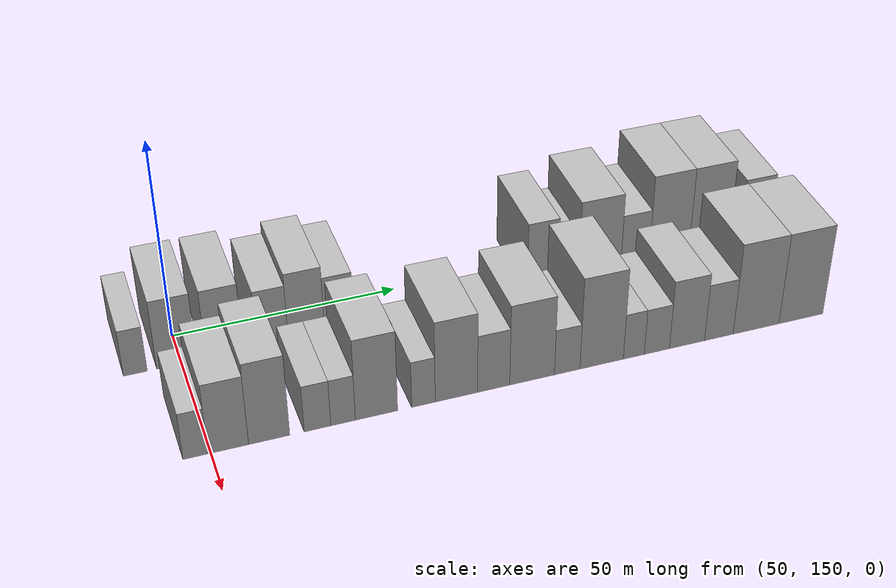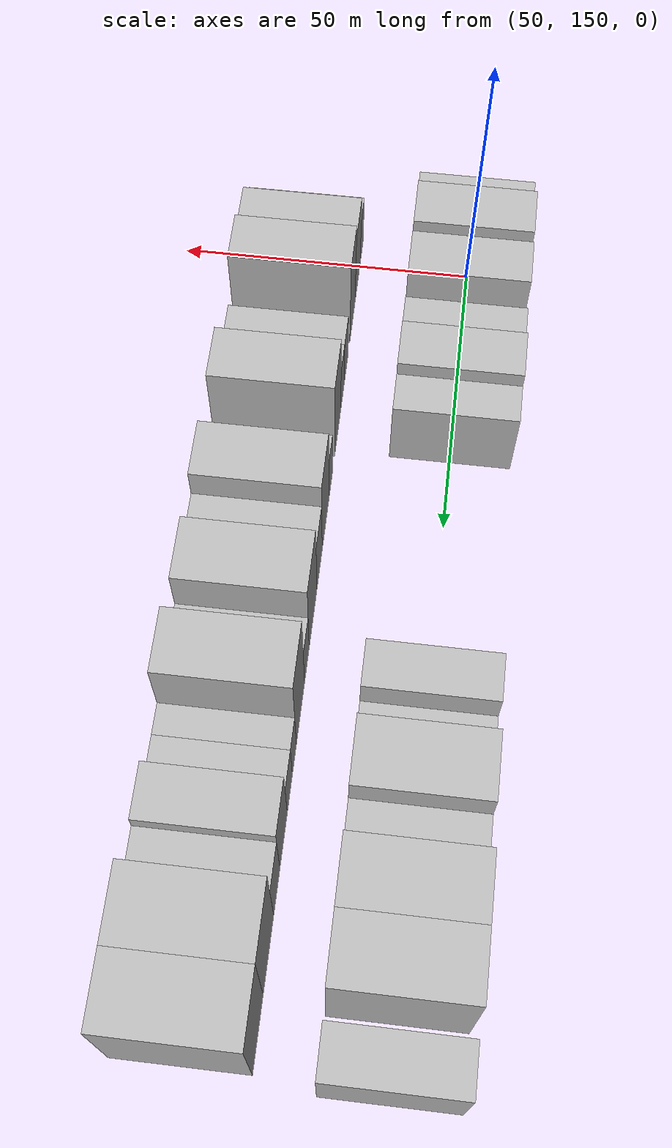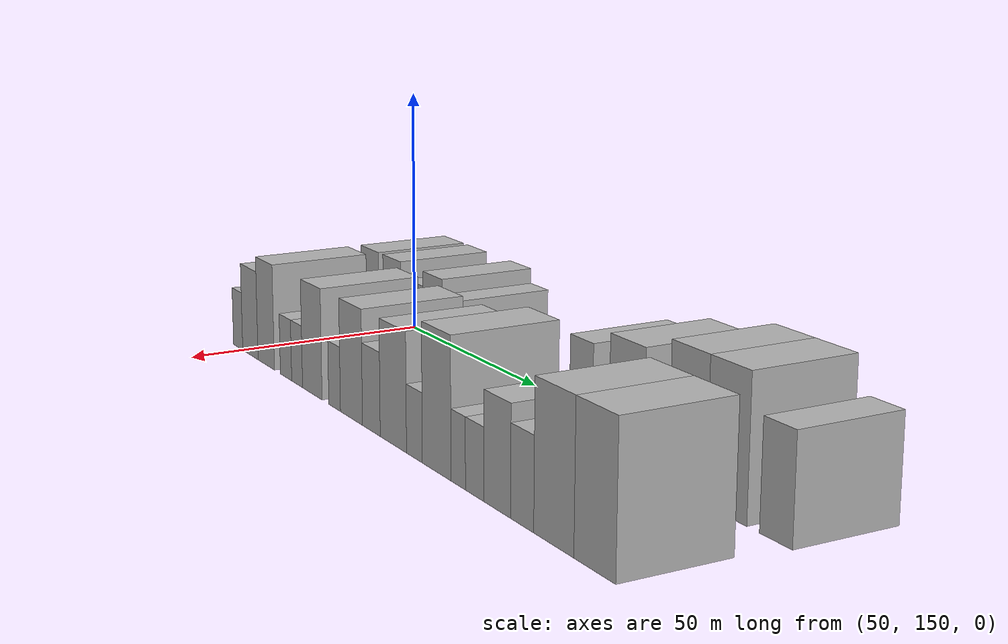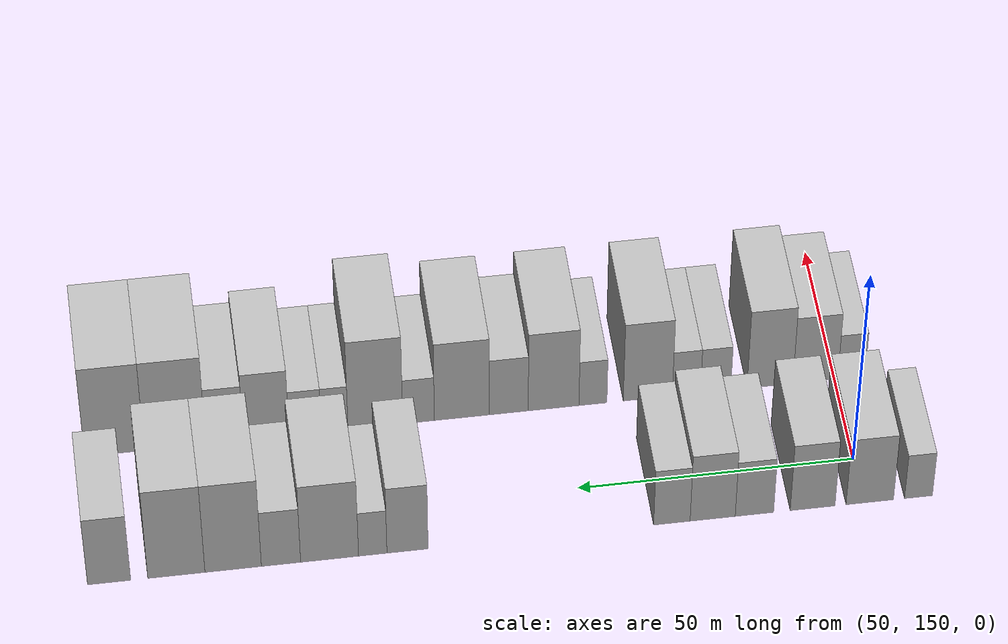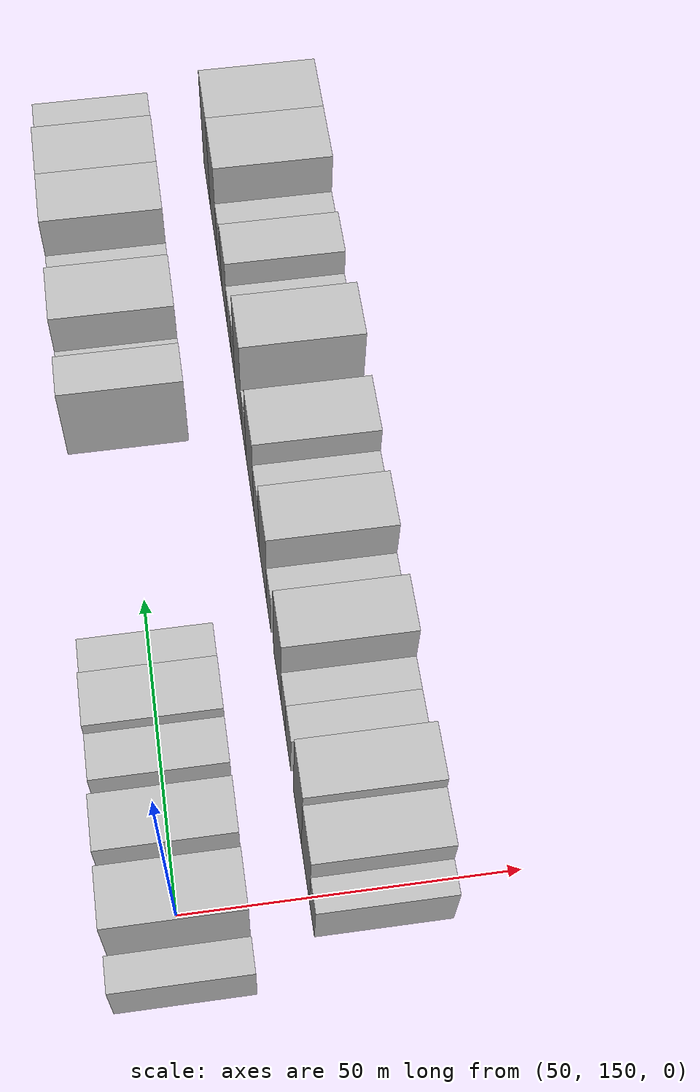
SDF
<sdf version="1.6">
 <world name="default">
  <model name="building_47">
   <static>1</static>
   <pose>50.0000 140.1266 0 0.000000 0.000000 0.000000</pose>
   <link name="link">
    <pose>0 0 6.00 0 0 0</pose>
    <collision name="collision"><geometry><box><size>20.0000 5.0519 12.0000</size></box></geometry></collision>
    <visual name="visual">
     <cast_shadows>0</cast_shadows>
     <geometry><box><size>20.0000 5.0519 12.0000</size></box></geometry>
     <material>
      <script>
       <uri>model://HANNAS_wall/materials/scripts</uri>
       <uri>model://HANNAS_wall/materials/textures</uri>
       <name>vrc/HANNAS_wall</name>
      </script>
     </material>
    </visual>
   </link>
  </model>
  <model name="building_48">
   <static>1</static>
   <pose>50.0000 148.9408 0 0.000000 0.000000 0.000000</pose>
   <link name="link">
    <pose>0 0 9.00 0 0 0</pose>
    <collision name="collision"><geometry><box><size>20.0000 8.5766 18.0000</size></box></geometry></collision>
    <visual name="visual">
     <cast_shadows>0</cast_shadows>
     <geometry><box><size>20.0000 8.5766 18.0000</size></box></geometry>
     <material>
      <script>
       <uri>model://HANNAS_wall/materials/scripts</uri>
       <uri>model://HANNAS_wall/materials/textures</uri>
       <name>vrc/HANNAS_wall</name>
      </script>
     </material>
    </visual>
   </link>
  </model>
  <model name="building_49">
   <static>1</static>
   <pose>50.0000 159.2718 0 0.000000 0.000000 0.000000</pose>
   <link name="link">
    <pose>0 0 9.00 0 0 0</pose>
    <collision name="collision"><geometry><box><size>20.0000 8.0853 18.0000</size></box></geometry></collision>
    <visual name="visual">
     <cast_shadows>0</cast_shadows>
     <geometry><box><size>20.0000 8.0853 18.0000</size></box></geometry>
     <material>
      <script>
       <uri>model://HANNAS_wall/materials/scripts</uri>
       <uri>model://HANNAS_wall/materials/textures</uri>
       <name>vrc/HANNAS_wall</name>
      </script>
     </material>
    </visual>
   </link>
  </model>
  <model name="building_50">
   <static>1</static>
   <pose>50.0000 169.7689 0 0.000000 0.000000 0.000000</pose>
   <link name="link">
    <pose>0 0 7.50 0 0 0</pose>
    <collision name="collision"><geometry><box><size>20.0000 6.9091 15.0000</size></box></geometry></collision>
    <visual name="visual">
     <cast_shadows>0</cast_shadows>
     <geometry><box><size>20.0000 6.9091 15.0000</size></box></geometry>
     <material>
      <script>
       <uri>model://HANNAS_wall/materials/scripts</uri>
       <uri>model://HANNAS_wall/materials/textures</uri>
       <name>vrc/HANNAS_wall</name>
      </script>
     </material>
    </visual>
   </link>
  </model>
  <model name="building_51">
   <static>1</static>
   <pose>50.0000 177.2824 0 0.000000 0.000000 0.000000</pose>
   <link name="link">
    <pose>0 0 9.00 0 0 0</pose>
    <collision name="collision"><geometry><box><size>20.0000 8.1179 18.0000</size></box></geometry></collision>
    <visual name="visual">
     <cast_shadows>0</cast_shadows>
     <geometry><box><size>20.0000 8.1179 18.0000</size></box></geometry>
     <material>
      <script>
       <uri>model://HANNAS_wall/materials/scripts</uri>
       <uri>model://HANNAS_wall/materials/textures</uri>
       <name>vrc/HANNAS_wall</name>
      </script>
     </material>
    </visual>
   </link>
  </model>
  <model name="building_52">
   <static>1</static>
   <pose>50.0000 184.6182 0 0.000000 0.000000 0.000000</pose>
   <link name="link">
    <pose>0 0 7.50 0 0 0</pose>
    <collision name="collision"><geometry><box><size>20.0000 6.5537 15.0000</size></box></geometry></collision>
    <visual name="visual">
     <cast_shadows>0</cast_shadows>
     <geometry><box><size>20.0000 6.5537 15.0000</size></box></geometry>
     <material>
      <script>
       <uri>model://HANNAS_wall/materials/scripts</uri>
       <uri>model://HANNAS_wall/materials/textures</uri>
       <name>vrc/HANNAS_wall</name>
      </script>
     </material>
    </visual>
   </link>
  </model>
  <model name="building_53">
   <static>1</static>
   <pose>50.0000 231.8629 0 0.000000 0.000000 0.000000</pose>
   <link name="link">
    <pose>0 0 9.00 0 0 0</pose>
    <collision name="collision"><geometry><box><size>20.0000 7.3119 18.0000</size></box></geometry></collision>
    <visual name="visual">
     <cast_shadows>0</cast_shadows>
     <geometry><box><size>20.0000 7.3119 18.0000</size></box></geometry>
     <material>
      <script>
       <uri>model://HANNAS_wall/materials/scripts</uri>
       <uri>model://HANNAS_wall/materials/textures</uri>
       <name>vrc/HANNAS_wall</name>
      </script>
     </material>
    </visual>
   </link>
  </model>
  <model name="building_54">
   <static>1</static>
   <pose>50.0000 238.0434 0 0.000000 0.000000 0.000000</pose>
   <link name="link">
    <pose>0 0 6.00 0 0 0</pose>
    <collision name="collision"><geometry><box><size>20.0000 5.0492 12.0000</size></box></geometry></collision>
    <visual name="visual">
     <cast_shadows>0</cast_shadows>
     <geometry><box><size>20.0000 5.0492 12.0000</size></box></geometry>
     <material>
      <script>
       <uri>model://HANNAS_wall/materials/scripts</uri>
       <uri>model://HANNAS_wall/materials/textures</uri>
       <name>vrc/HANNAS_wall</name>
      </script>
     </material>
    </visual>
   </link>
  </model>
  <model name="building_55">
   <static>1</static>
   <pose>50.0000 245.7052 0 0.000000 0.000000 0.000000</pose>
   <link name="link">
    <pose>0 0 10.50 0 0 0</pose>
    <collision name="collision"><geometry><box><size>20.0000 10.2743 21.0000</size></box></geometry></collision>
    <visual name="visual">
     <cast_shadows>0</cast_shadows>
     <geometry><box><size>20.0000 10.2743 21.0000</size></box></geometry>
     <material>
      <script>
       <uri>model://HANNAS_wall/materials/scripts</uri>
       <uri>model://HANNAS_wall/materials/textures</uri>
       <name>vrc/HANNAS_wall</name>
      </script>
     </material>
    </visual>
   </link>
  </model>
  <model name="building_56">
   <static>1</static>
   <pose>50.0000 254.3147 0 0.000000 0.000000 0.000000</pose>
   <link name="link">
    <pose>0 0 7.50 0 0 0</pose>
    <collision name="collision"><geometry><box><size>20.0000 6.9448 15.0000</size></box></geometry></collision>
    <visual name="visual">
     <cast_shadows>0</cast_shadows>
     <geometry><box><size>20.0000 6.9448 15.0000</size></box></geometry>
     <material>
      <script>
       <uri>model://HANNAS_wall/materials/scripts</uri>
       <uri>model://HANNAS_wall/materials/textures</uri>
       <name>vrc/HANNAS_wall</name>
      </script>
     </material>
    </visual>
   </link>
  </model>
  <model name="building_57">
   <static>1</static>
   <pose>50.0000 262.7760 0 0.000000 0.000000 0.000000</pose>
   <link name="link">
    <pose>0 0 12.00 0 0 0</pose>
    <collision name="collision"><geometry><box><size>20.0000 9.9779 24.0000</size></box></geometry></collision>
    <visual name="visual">
     <cast_shadows>0</cast_shadows>
     <geometry><box><size>20.0000 9.9779 24.0000</size></box></geometry>
     <material>
      <script>
       <uri>model://HANNAS_wall/materials/scripts</uri>
       <uri>model://HANNAS_wall/materials/textures</uri>
       <name>vrc/HANNAS_wall</name>
      </script>
     </material>
    </visual>
   </link>
  </model>
  <model name="building_58">
   <static>1</static>
   <pose>50.0000 272.8071 0 0.000000 0.000000 0.000000</pose>
   <link name="link">
    <pose>0 0 12.00 0 0 0</pose>
    <collision name="collision"><geometry><box><size>20.0000 10.0843 24.0000</size></box></geometry></collision>
    <visual name="visual">
     <cast_shadows>0</cast_shadows>
     <geometry><box><size>20.0000 10.0843 24.0000</size></box></geometry>
     <material>
      <script>
       <uri>model://HANNAS_wall/materials/scripts</uri>
       <uri>model://HANNAS_wall/materials/textures</uri>
       <name>vrc/HANNAS_wall</name>
      </script>
     </material>
    </visual>
   </link>
  </model>
  <model name="building_59">
   <static>1</static>
   <pose>50.0000 284.6481 0 0.000000 0.000000 0.000000</pose>
   <link name="link">
    <pose>0 0 9.00 0 0 0</pose>
    <collision name="collision"><geometry><box><size>20.0000 7.5978 18.0000</size></box></geometry></collision>
    <visual name="visual">
     <cast_shadows>0</cast_shadows>
     <geometry><box><size>20.0000 7.5978 18.0000</size></box></geometry>
     <material>
      <script>
       <uri>model://HANNAS_wall/materials/scripts</uri>
       <uri>model://HANNAS_wall/materials/textures</uri>
       <name>vrc/HANNAS_wall</name>
      </script>
     </material>
    </visual>
   </link>
  </model>
  <model name="building_106">
   <static>1</static>
   <pose>79.0000 146.9332 0 0.000000 0.000000 0.000000</pose>
   <link name="link">
    <pose>0 0 6.00 0 0 0</pose>
    <collision name="collision"><geometry><box><size>20.0000 5.0632 12.0000</size></box></geometry></collision>
    <visual name="visual">
     <cast_shadows>0</cast_shadows>
     <geometry><box><size>20.0000 5.0632 12.0000</size></box></geometry>
     <material>
      <script>
       <uri>model://HANNAS_wall/materials/scripts</uri>
       <uri>model://HANNAS_wall/materials/textures</uri>
       <name>vrc/HANNAS_wall</name>
      </script>
     </material>
    </visual>
   </link>
  </model>
  <model name="building_107">
   <static>1</static>
   <pose>79.0000 153.6059 0 0.000000 0.000000 0.000000</pose>
   <link name="link">
    <pose>0 0 9.00 0 0 0</pose>
    <collision name="collision"><geometry><box><size>20.0000 8.2823 18.0000</size></box></geometry></collision>
    <visual name="visual">
     <cast_shadows>0</cast_shadows>
     <geometry><box><size>20.0000 8.2823 18.0000</size></box></geometry>
     <material>
      <script>
       <uri>model://HANNAS_wall/materials/scripts</uri>
       <uri>model://HANNAS_wall/materials/textures</uri>
       <name>vrc/HANNAS_wall</name>
      </script>
     </material>
    </visual>
   </link>
  </model>
  <model name="building_108">
   <static>1</static>
   <pose>79.0000 161.9780 0 0.000000 0.000000 0.000000</pose>
   <link name="link">
    <pose>0 0 10.50 0 0 0</pose>
    <collision name="collision"><geometry><box><size>20.0000 8.4619 21.0000</size></box></geometry></collision>
    <visual name="visual">
     <cast_shadows>0</cast_shadows>
     <geometry><box><size>20.0000 8.4619 21.0000</size></box></geometry>
     <material>
      <script>
       <uri>model://HANNAS_wall/materials/scripts</uri>
       <uri>model://HANNAS_wall/materials/textures</uri>
       <name>vrc/HANNAS_wall</name>
      </script>
     </material>
    </visual>
   </link>
  </model>
  <model name="building_109">
   <static>1</static>
   <pose>79.0000 171.9873 0 0.000000 0.000000 0.000000</pose>
   <link name="link">
    <pose>0 0 6.00 0 0 0</pose>
    <collision name="collision"><geometry><box><size>20.0000 5.5567 12.0000</size></box></geometry></collision>
    <visual name="visual">
     <cast_shadows>0</cast_shadows>
     <geometry><box><size>20.0000 5.5567 12.0000</size></box></geometry>
     <material>
      <script>
       <uri>model://HANNAS_wall/materials/scripts</uri>
       <uri>model://HANNAS_wall/materials/textures</uri>
       <name>vrc/HANNAS_wall</name>
      </script>
     </material>
    </visual>
   </link>
  </model>
  <model name="building_110">
   <static>1</static>
   <pose>79.0000 177.3625 0 0.000000 0.000000 0.000000</pose>
   <link name="link">
    <pose>0 0 6.00 0 0 0</pose>
    <collision name="collision"><geometry><box><size>20.0000 5.1935 12.0000</size></box></geometry></collision>
    <visual name="visual">
     <cast_shadows>0</cast_shadows>
     <geometry><box><size>20.0000 5.1935 12.0000</size></box></geometry>
     <material>
      <script>
       <uri>model://HANNAS_wall/materials/scripts</uri>
       <uri>model://HANNAS_wall/materials/textures</uri>
       <name>vrc/HANNAS_wall</name>
      </script>
     </material>
    </visual>
   </link>
  </model>
  <model name="building_111">
   <static>1</static>
   <pose>79.0000 184.4590 0 0.000000 0.000000 0.000000</pose>
   <link name="link">
    <pose>0 0 10.50 0 0 0</pose>
    <collision name="collision"><geometry><box><size>20.0000 8.9995 21.0000</size></box></geometry></collision>
    <visual name="visual">
     <cast_shadows>0</cast_shadows>
     <geometry><box><size>20.0000 8.9995 21.0000</size></box></geometry>
     <material>
      <script>
       <uri>model://HANNAS_wall/materials/scripts</uri>
       <uri>model://HANNAS_wall/materials/textures</uri>
       <name>vrc/HANNAS_wall</name>
      </script>
     </material>
    </visual>
   </link>
  </model>
  <model name="building_112">
   <static>1</static>
   <pose>79.0000 194.5146 0 0.000000 0.000000 0.000000</pose>
   <link name="link">
    <pose>0 0 6.00 0 0 0</pose>
    <collision name="collision"><geometry><box><size>20.0000 5.1118 12.0000</size></box></geometry></collision>
    <visual name="visual">
     <cast_shadows>0</cast_shadows>
     <geometry><box><size>20.0000 5.1118 12.0000</size></box></geometry>
     <material>
      <script>
       <uri>model://HANNAS_wall/materials/scripts</uri>
       <uri>model://HANNAS_wall/materials/textures</uri>
       <name>vrc/HANNAS_wall</name>
      </script>
     </material>
    </visual>
   </link>
  </model>
  <model name="building_113">
   <static>1</static>
   <pose>79.0000 201.7091 0 0.000000 0.000000 0.000000</pose>
   <link name="link">
    <pose>0 0 10.50 0 0 0</pose>
    <collision name="collision"><geometry><box><size>20.0000 9.2771 21.0000</size></box></geometry></collision>
    <visual name="visual">
     <cast_shadows>0</cast_shadows>
     <geometry><box><size>20.0000 9.2771 21.0000</size></box></geometry>
     <material>
      <script>
       <uri>model://HANNAS_wall/materials/scripts</uri>
       <uri>model://HANNAS_wall/materials/textures</uri>
       <name>vrc/HANNAS_wall</name>
      </script>
     </material>
    </visual>
   </link>
  </model>
  <model name="building_114">
   <static>1</static>
   <pose>79.0000 209.8970 0 0.000000 0.000000 0.000000</pose>
   <link name="link">
    <pose>0 0 7.50 0 0 0</pose>
    <collision name="collision"><geometry><box><size>20.0000 7.0987 15.0000</size></box></geometry></collision>
    <visual name="visual">
     <cast_shadows>0</cast_shadows>
     <geometry><box><size>20.0000 7.0987 15.0000</size></box></geometry>
     <material>
      <script>
       <uri>model://HANNAS_wall/materials/scripts</uri>
       <uri>model://HANNAS_wall/materials/textures</uri>
       <name>vrc/HANNAS_wall</name>
      </script>
     </material>
    </visual>
   </link>
  </model>
  <model name="building_115">
   <static>1</static>
   <pose>79.0000 218.4565 0 0.000000 0.000000 0.000000</pose>
   <link name="link">
    <pose>0 0 10.50 0 0 0</pose>
    <collision name="collision"><geometry><box><size>20.0000 10.0203 21.0000</size></box></geometry></collision>
    <visual name="visual">
     <cast_shadows>0</cast_shadows>
     <geometry><box><size>20.0000 10.0203 21.0000</size></box></geometry>
     <material>
      <script>
       <uri>model://HANNAS_wall/materials/scripts</uri>
       <uri>model://HANNAS_wall/materials/textures</uri>
       <name>vrc/HANNAS_wall</name>
      </script>
     </material>
    </visual>
   </link>
  </model>
  <model name="building_116">
   <static>1</static>
   <pose>79.0000 226.3455 0 0.000000 0.000000 0.000000</pose>
   <link name="link">
    <pose>0 0 6.00 0 0 0</pose>
    <collision name="collision"><geometry><box><size>20.0000 5.7576 12.0000</size></box></geometry></collision>
    <visual name="visual">
     <cast_shadows>0</cast_shadows>
     <geometry><box><size>20.0000 5.7576 12.0000</size></box></geometry>
     <material>
      <script>
       <uri>model://HANNAS_wall/materials/scripts</uri>
       <uri>model://HANNAS_wall/materials/textures</uri>
       <name>vrc/HANNAS_wall</name>
      </script>
     </material>
    </visual>
   </link>
  </model>
  <model name="building_117">
   <static>1</static>
   <pose>79.0000 234.1954 0 0.000000 0.000000 0.000000</pose>
   <link name="link">
    <pose>0 0 12.00 0 0 0</pose>
    <collision name="collision"><geometry><box><size>20.0000 9.9422 24.0000</size></box></geometry></collision>
    <visual name="visual">
     <cast_shadows>0</cast_shadows>
     <geometry><box><size>20.0000 9.9422 24.0000</size></box></geometry>
     <material>
      <script>
       <uri>model://HANNAS_wall/materials/scripts</uri>
       <uri>model://HANNAS_wall/materials/textures</uri>
       <name>vrc/HANNAS_wall</name>
      </script>
     </material>
    </visual>
   </link>
  </model>
  <model name="building_118">
   <static>1</static>
   <pose>79.0000 241.5914 0 0.000000 0.000000 0.000000</pose>
   <link name="link">
    <pose>0 0 6.00 0 0 0</pose>
    <collision name="collision"><geometry><box><size>20.0000 4.8498 12.0000</size></box></geometry></collision>
    <visual name="visual">
     <cast_shadows>0</cast_shadows>
     <geometry><box><size>20.0000 4.8498 12.0000</size></box></geometry>
     <material>
      <script>
       <uri>model://HANNAS_wall/materials/scripts</uri>
       <uri>model://HANNAS_wall/materials/textures</uri>
       <name>vrc/HANNAS_wall</name>
      </script>
     </material>
    </visual>
   </link>
  </model>
  <model name="building_119">
   <static>1</static>
   <pose>79.0000 246.9399 0 0.000000 0.000000 0.000000</pose>
   <link name="link">
    <pose>0 0 6.00 0 0 0</pose>
    <collision name="collision"><geometry><box><size>20.0000 5.8474 12.0000</size></box></geometry></collision>
    <visual name="visual">
     <cast_shadows>0</cast_shadows>
     <geometry><box><size>20.0000 5.8474 12.0000</size></box></geometry>
     <material>
      <script>
       <uri>model://HANNAS_wall/materials/scripts</uri>
       <uri>model://HANNAS_wall/materials/textures</uri>
       <name>vrc/HANNAS_wall</name>
      </script>
     </material>
    </visual>
   </link>
  </model>
  <model name="building_120">
   <static>1</static>
   <pose>79.0000 254.0075 0 0.000000 0.000000 0.000000</pose>
   <link name="link">
    <pose>0 0 9.00 0 0 0</pose>
    <collision name="collision"><geometry><box><size>20.0000 8.2877 18.0000</size></box></geometry></collision>
    <visual name="visual">
     <cast_shadows>0</cast_shadows>
     <geometry><box><size>20.0000 8.2877 18.0000</size></box></geometry>
     <material>
      <script>
       <uri>model://HANNAS_wall/materials/scripts</uri>
       <uri>model://HANNAS_wall/materials/textures</uri>
       <name>vrc/HANNAS_wall</name>
      </script>
     </material>
    </visual>
   </link>
  </model>
  <model name="building_121">
   <static>1</static>
   <pose>79.0000 261.5442 0 0.000000 0.000000 0.000000</pose>
   <link name="link">
    <pose>0 0 7.50 0 0 0</pose>
    <collision name="collision"><geometry><box><size>20.0000 6.7857 15.0000</size></box></geometry></collision>
    <visual name="visual">
     <cast_shadows>0</cast_shadows>
     <geometry><box><size>20.0000 6.7857 15.0000</size></box></geometry>
     <material>
      <script>
       <uri>model://HANNAS_wall/materials/scripts</uri>
       <uri>model://HANNAS_wall/materials/textures</uri>
       <name>vrc/HANNAS_wall</name>
      </script>
     </material>
    </visual>
   </link>
  </model>
  <model name="building_122">
   <static>1</static>
   <pose>79.0000 270.4710 0 0.000000 0.000000 0.000000</pose>
   <link name="link">
    <pose>0 0 12.00 0 0 0</pose>
    <collision name="collision"><geometry><box><size>20.0000 11.0678 24.0000</size></box></geometry></collision>
    <visual name="visual">
     <cast_shadows>0</cast_shadows>
     <geometry><box><size>20.0000 11.0678 24.0000</size></box></geometry>
     <material>
      <script>
       <uri>model://HANNAS_wall/materials/scripts</uri>
       <uri>model://HANNAS_wall/materials/textures</uri>
       <name>vrc/HANNAS_wall</name>
      </script>
     </material>
    </visual>
   </link>
  </model>
  <model name="building_123">
   <static>1</static>
   <pose>79.0000 281.3671 0 0.000000 0.000000 0.000000</pose>
   <link name="link">
    <pose>0 0 12.00 0 0 0</pose>
    <collision name="collision"><geometry><box><size>20.0000 10.7245 24.0000</size></box></geometry></collision>
    <visual name="visual">
     <cast_shadows>0</cast_shadows>
     <geometry><box><size>20.0000 10.7245 24.0000</size></box></geometry>
     <material>
      <script>
       <uri>model://HANNAS_wall/materials/scripts</uri>
       <uri>model://HANNAS_wall/materials/textures</uri>
       <name>vrc/HANNAS_wall</name>
      </script>
     </material>
    </visual>
   </link>
  </model>
 </world>
</sdf>
